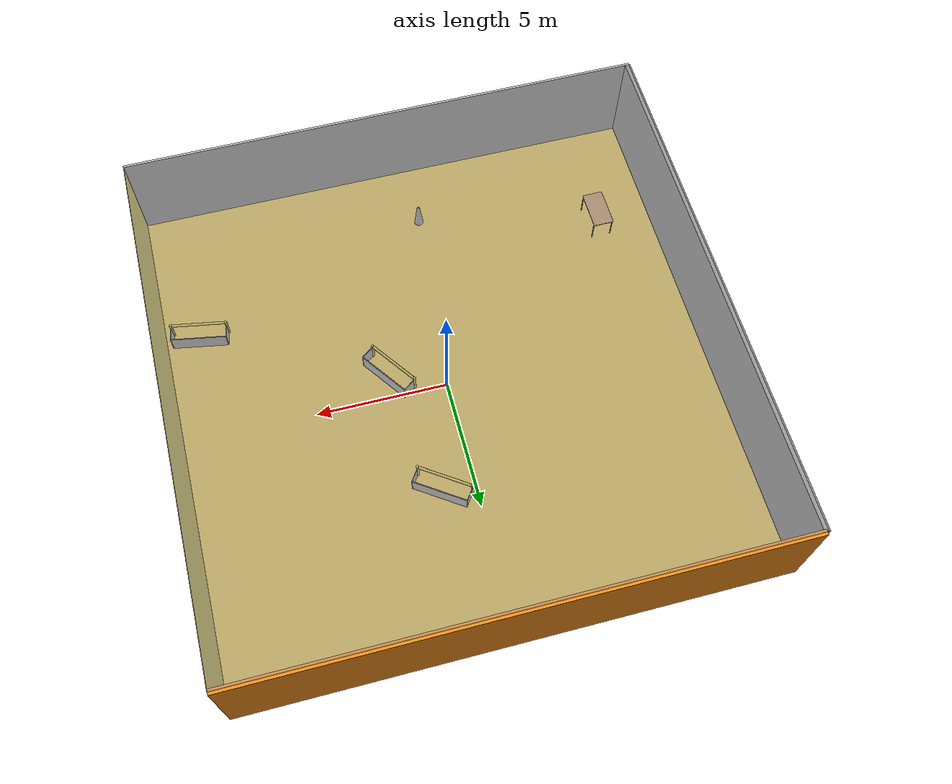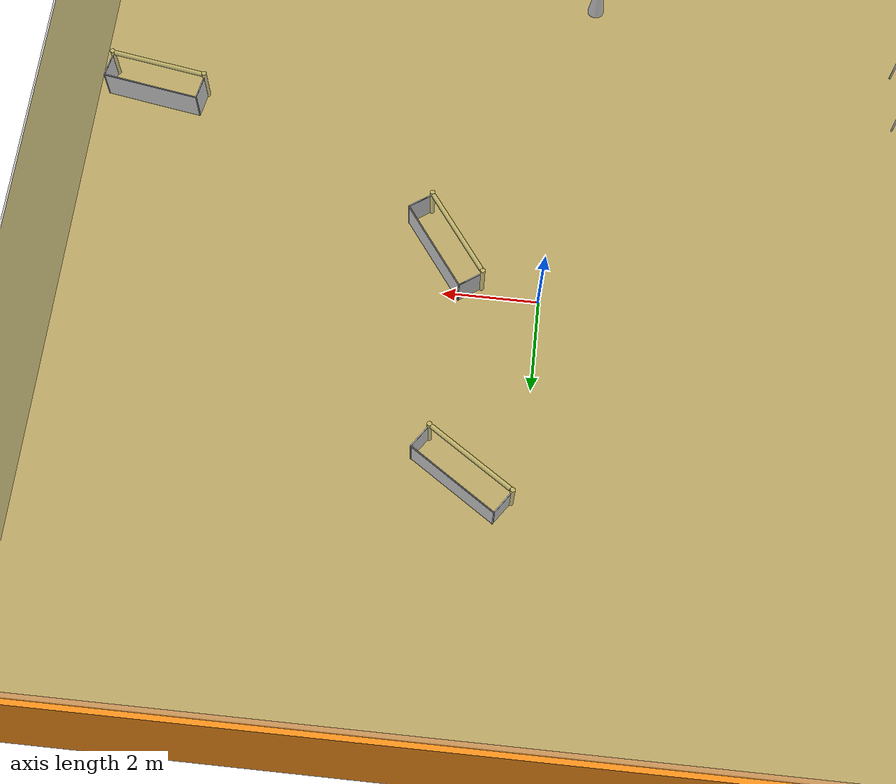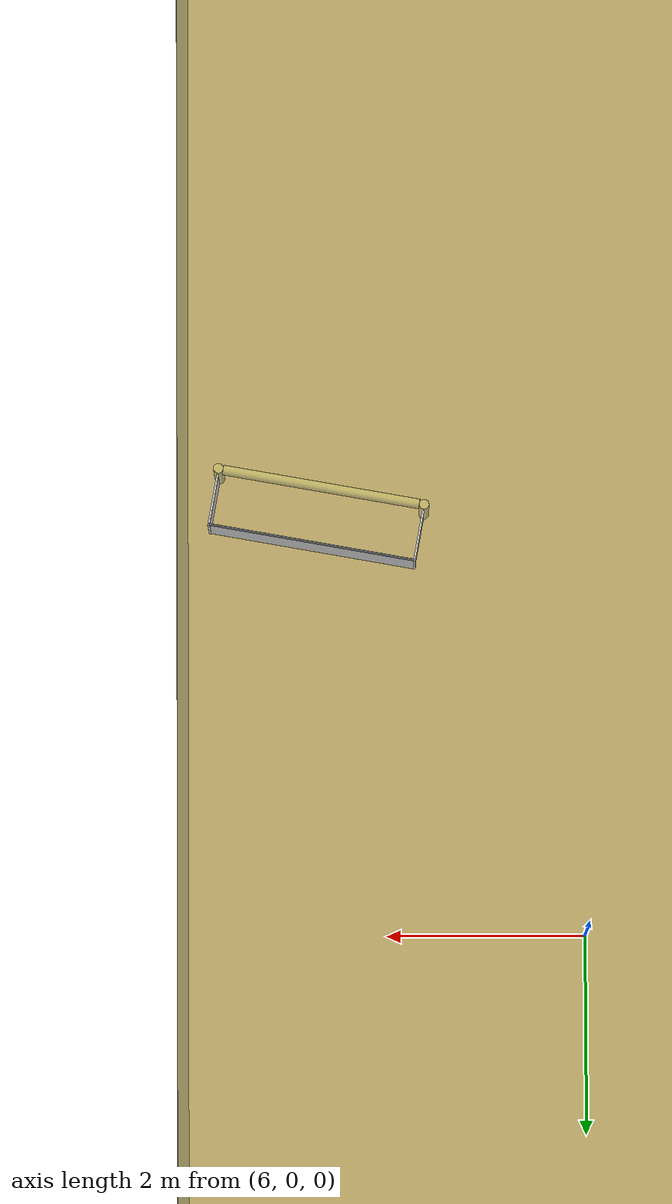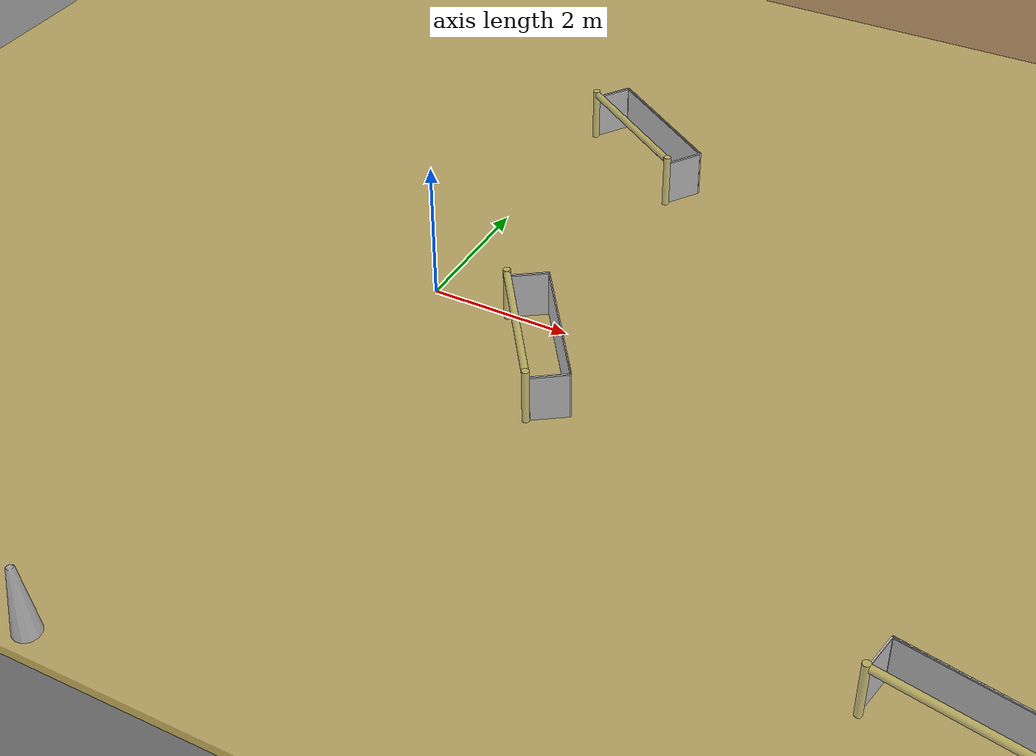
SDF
<sdf version="1.4">
 <world name="default">
  <physics type="ode">
   <max_step_size>0.001</max_step_size>
   <real_time_factor>1</real_time_factor>
   <real_time_update_rate>1000</real_time_update_rate>
   <gravity>0 0 -9.8</gravity>
  </physics>
  <scene><ambient>0.4 0.4 0.4 1</ambient><background>0.7 0.7 0.7 1</background><shadows>1</shadows></scene>
  <model name="Surrounding">
   <static>1</static>
   <link name="Ceiling">
    <collision name="Ceiling_Collision"><geometry><box><size>20 20 0.1</size></box></geometry></collision>
    <visual name="Ceiling_Visual">
     <geometry><box><size>20 20 0.1</size></box></geometry>
     <material>
      <script><uri>file://media/materials/scripts/gazebo.material</uri><name>Gazebo/GreyTransparent</name></script>
     </material>
    </visual>
    <pose>0 0 4.05 0 0 0</pose>
   </link>
   <link name="Wall_South">
    <collision name="Wall_South_Collision">
     <geometry><box><size>20 0 4</size></box></geometry>
     <pose>0 0 2 0 -0 0</pose>
    </collision>
    <visual name="Wall_South_Visual">
     <pose>0 0 2 0 -0 0</pose>
     <geometry><box><size>20 0 4</size></box></geometry>
     <material>
      <script><uri>file://media/materials/scripts/gazebo.material</uri><name>Gazebo/PioneerBody</name></script>
     </material>
    </visual>
    <velocity_decay><linear>0</linear><angular>0</angular></velocity_decay>
    <pose>0 -10 0 0 -0 0</pose>
   </link>
   <link name="Wall_East">
    <collision name="Wall_21_Collision">
     <geometry><box><size>20 0 4</size></box></geometry>
     <pose>0 0 2 0 -0 0</pose>
    </collision>
    <visual name="Wall_21_Visual">
     <pose>0 0 2 0 -0 0</pose>
     <geometry><box><size>20 0 4</size></box></geometry>
     <material>
      <script><uri>file://media/materials/scripts/gazebo.material</uri><name>Gazebo/ZincYellow</name></script>
     </material>
    </visual>
    <velocity_decay><linear>0</linear><angular>0</angular></velocity_decay>
    <pose>10 0 0 0 -0 1.5708</pose>
   </link>
   <link name="Wall_North">
    <collision name="Wall_22_Collision">
     <geometry><box><size>20 0.2 4</size></box></geometry>
     <pose>0 0 2 0 -0 0</pose>
    </collision>
    <visual name="Wall_22_Visual">
     <pose>0 0 2 0 -0 0</pose>
     <geometry><box><size>20 0.2 4</size></box></geometry>
     <material>
      <script><uri>file://media/materials/scripts/gazebo.material</uri><name>Gazebo/Orange</name></script>
     </material>
    </visual>
    <velocity_decay><linear>0</linear><angular>0</angular></velocity_decay>
    <pose>0 10 0 0 -0 0</pose>
   </link>
   <link name="Wall_West">
    <collision name="Wall_23_Collision">
     <geometry><box><size>20 0.2 4</size></box></geometry>
     <pose>0 0 2 0 -0 0</pose>
    </collision>
    <visual name="Wall_23_Visual">
     <pose>0 0 2 0 -0 0</pose>
     <geometry><box><size>20 0.2 4</size></box></geometry>
     <material>
      <script><uri>file://media/materials/scripts/gazebo.material</uri><name>Gazebo/GreyGradientSky</name></script>
     </material>
    </visual>
    <velocity_decay><linear>0</linear><angular>0</angular></velocity_decay>
    <pose>-10 0 0 0 0 -1.5708</pose>
   </link>
   <link name="Ground_link">
    <collision name="collision">
     <pose>0 0 .05 0 -0 0</pose>
     <geometry><box><size>20 20 0.1</size></box></geometry>
    </collision>
    <visual name="visual">
     <pose>0 0 .05 0 -0 0</pose>
     <geometry><box><size>20 20 0.1</size></box></geometry>
     <material>
      <script><uri>file://media/materials/scripts/gazebo.material</uri><name>Gazebo/Gold</name></script>
     </material>
    </visual>
   </link>
   <static>1</static>
  </model>
  <spherical_coordinates>
   <surface_model>EARTH_WGS84</surface_model>
   <latitude_deg>0</latitude_deg>
   <longitude_deg>0</longitude_deg>
   <elevation>0</elevation>
   <heading_deg>0</heading_deg>
  </spherical_coordinates>
  <light name="lightball_0" type="diffuse">
   <diffuse>0.8 0.8 0.8 1</diffuse>
   <specular>0.2 0.2 0.2 1</specular>
   <attenuation>
    <range>100</range>
    <constant>0.7</constant>
    <linear>0.01</linear>
    <quadratic>0.001</quadratic>
   </attenuation>
   <direction>-0.5 0.1 -0.9</direction>
   <pose>6.2822168609 7.05008044359 3.86592189834 0 0 0</pose>
  </light>
  <light name="lightball_1" type="diffuse">
   <diffuse>0.8 0.8 0.8 1</diffuse>
   <specular>0.2 0.2 0.2 1</specular>
   <attenuation>
    <range>100</range>
    <constant>0.7</constant>
    <linear>0.01</linear>
    <quadratic>0.001</quadratic>
   </attenuation>
   <direction>-0.5 0.1 -0.9</direction>
   <pose>-6.54626562218 -2.73923544336 2.24742081206 0 0 0</pose>
  </light>
  <light name="lightball_2" type="diffuse">
   <diffuse>0.8 0.8 0.8 1</diffuse>
   <specular>0.2 0.2 0.2 1</specular>
   <attenuation>
    <range>100</range>
    <constant>0.7</constant>
    <linear>0.01</linear>
    <quadratic>0.001</quadratic>
   </attenuation>
   <direction>-0.5 0.1 -0.9</direction>
   <pose>6.14173782871 -6.58648511284 2.86311546895 0 0 0</pose>
  </light>
  <light name="lightball_3" type="diffuse">
   <diffuse>0.8 0.8 0.8 1</diffuse>
   <specular>0.2 0.2 0.2 1</specular>
   <attenuation>
    <range>100</range>
    <constant>0.7</constant>
    <linear>0.01</linear>
    <quadratic>0.001</quadratic>
   </attenuation>
   <direction>-0.5 0.1 -0.9</direction>
   <pose>-4.92530593858 4.25798101217 3.57456487431 0 0 0</pose>
  </light>
  <light name="lightball_4" type="diffuse">
   <diffuse>0.8 0.8 0.8 1</diffuse>
   <specular>0.2 0.2 0.2 1</specular>
   <attenuation>
    <range>100</range>
    <constant>0.7</constant>
    <linear>0.01</linear>
    <quadratic>0.001</quadratic>
   </attenuation>
   <direction>-0.5 0.1 -0.9</direction>
   <pose>-8.1463753253 5.70236988476 2.81824091881 0 0 0</pose>
  </light>
  <light name="lightball_5" type="diffuse">
   <diffuse>0.8 0.8 0.8 1</diffuse>
   <specular>0.2 0.2 0.2 1</specular>
   <attenuation>
    <range>100</range>
    <constant>0.7</constant>
    <linear>0.01</linear>
    <quadratic>0.001</quadratic>
   </attenuation>
   <direction>-0.5 0.1 -0.9</direction>
   <pose>-5.01068905586 1.17331627964 2.93509852975 0 0 0</pose>
  </light>
  <light name="lightball_6" type="diffuse">
   <diffuse>0.8 0.8 0.8 1</diffuse>
   <specular>0.2 0.2 0.2 1</specular>
   <attenuation>
    <range>100</range>
    <constant>0.7</constant>
    <linear>0.01</linear>
    <quadratic>0.001</quadratic>
   </attenuation>
   <direction>-0.5 0.1 -0.9</direction>
   <pose>7.87506555163 -3.53495862551 0.859140317569 0 0 0</pose>
  </light>
  <light name="lightball_7" type="diffuse">
   <diffuse>0.8 0.8 0.8 1</diffuse>
   <specular>0.2 0.2 0.2 1</specular>
   <attenuation>
    <range>100</range>
    <constant>0.7</constant>
    <linear>0.01</linear>
    <quadratic>0.001</quadratic>
   </attenuation>
   <direction>-0.5 0.1 -0.9</direction>
   <pose>-0.378975198676 8.3122732729 2.19447333579 0 0 0</pose>
  </light>
  <light name="lightball_8" type="diffuse">
   <diffuse>0.8 0.8 0.8 1</diffuse>
   <specular>0.2 0.2 0.2 1</specular>
   <attenuation>
    <range>100</range>
    <constant>0.7</constant>
    <linear>0.01</linear>
    <quadratic>0.001</quadratic>
   </attenuation>
   <direction>-0.5 0.1 -0.9</direction>
   <pose>4.85516891193 -7.69851462329 3.6653881714 0 0 0</pose>
  </light>
  <light name="lightball_9" type="diffuse">
   <diffuse>0.8 0.8 0.8 1</diffuse>
   <specular>0.2 0.2 0.2 1</specular>
   <attenuation>
    <range>100</range>
    <constant>0.7</constant>
    <linear>0.01</linear>
    <quadratic>0.001</quadratic>
   </attenuation>
   <direction>-0.5 0.1 -0.9</direction>
   <pose>4.04732279539 0.900325204129 3.42926153061 0 0 0</pose>
  </light>
  <light name="lightball_10" type="diffuse">
   <diffuse>0.8 0.8 0.8 1</diffuse>
   <specular>0.2 0.2 0.2 1</specular>
   <attenuation>
    <range>100</range>
    <constant>0.7</constant>
    <linear>0.01</linear>
    <quadratic>0.001</quadratic>
   </attenuation>
   <direction>-0.5 0.1 -0.9</direction>
   <pose>-4.497785278 3.43028273379 2.60517007181 0 0 0</pose>
  </light>
  <include><uri>model://table</uri><pose>-7.71276691613 -5.62697993932 0 0 0 1.58285802847</pose></include>
  <include>
   <uri>model://construction_cone</uri>
   <pose>-0.734402553121 -7.41358611947 0 0 0 2.52271387807</pose>
  </include>
  <include>
   <uri>model://robocup_3Dsim_goal</uri>
   <pose>1.80671481073 -1.01848334099 0 0 0 0.611800480971</pose>
  </include>
  <include>
   <uri>model://robocup_3Dsim_goal</uri>
   <pose>1.07352189344 3.88995475784 0 0 0 0.967439478658</pose>
  </include>
  <include>
   <uri>model://robocup_3Dsim_goal</uri>
   <pose>8.64162203383 -4.47607273982 0 0 0 1.39228171297</pose>
  </include>
 </world>
</sdf>

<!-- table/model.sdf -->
<sdf version="1.5">
  <model name="table">
    <static>true</static>
    <link name="link">
      <collision name="surface">
        <pose>0 0 1.0 0 0 0</pose>
        <geometry>
          <box>
            <size>1.5 0.8 0.03</size>
          </box>
        </geometry>
        <surface>
          <friction>
            <ode>
              <mu>0.6</mu>
              <mu2>0.6</mu2>
            </ode>
          </friction>
        </surface>
      </collision>
      <visual name="visual1">
        <pose>0 0 1.0 0 0 0</pose>
        <geometry>
          <box>
            <size>1.5 0.8 0.03</size>
          </box>
        </geometry>
        <material>
          <script>
            <uri>model://media/materials/scripts/gazebo.material</uri>
            <name>Gazebo/Wood</name>
          </script>
        </material>
      </visual>
      <collision name="front_left_leg">
        <pose>0.68 0.38 0.5 0 0 0</pose>
        <geometry>
          <cylinder>
            <radius>0.02</radius>
            <length>1.0</length>
          </cylinder>
        </geometry>
      </collision>
      <visual name="front_left_leg">
        <pose>0.68 0.38 0.5 0 0 0</pose>
        <geometry>
          <cylinder>
            <radius>0.02</radius>
            <length>1.0</length>
          </cylinder>
        </geometry>
        <material>
          <script>
            <uri>model://media/materials/scripts/gazebo.material</uri>
            <name>Gazebo/Grey</name>
          </script>
        </material>
      </visual>
      <collision name="front_right_leg">
        <pose>0.68 -0.38 0.5 0 0 0</pose>
        <geometry>
          <cylinder>
            <radius>0.02</radius>
            <length>1.0</length>
          </cylinder>
        </geometry>
      </collision>
      <visual name="front_right_leg">
        <pose>0.68 -0.38 0.5 0 0 0</pose>
        <geometry>
          <cylinder>
            <radius>0.02</radius>
            <length>1.0</length>
          </cylinder>
        </geometry>
        <material>
          <script>
            <uri>model://media/materials/scripts/gazebo.material</uri>
            <name>Gazebo/Grey</name>
          </script>
        </material>
      </visual>
      <collision name="back_right_leg">
        <pose>-0.68 -0.38 0.5 0 0 0</pose>
        <geometry>
          <cylinder>
            <radius>0.02</radius>
            <length>1.0</length>
          </cylinder>
        </geometry>
      </collision>
      <visual name="back_right_leg">
        <pose>-0.68 -0.38 0.5 0 0 0</pose>
        <geometry>
          <cylinder>
            <radius>0.02</radius>
            <length>1.0</length>
          </cylinder>
        </geometry>
        <material>
          <script>
            <uri>model://media/materials/scripts/gazebo.material</uri>
            <name>Gazebo/Grey</name>
          </script>
        </material>
      </visual>
      <collision name="back_left_leg">
        <pose>-0.68 0.38 0.5 0 0 0</pose>
        <geometry>
          <cylinder>
            <radius>0.02</radius>
            <length>1.0</length>
          </cylinder>
        </geometry>
      </collision>
      <visual name="back_left_leg">
        <pose>-0.68 0.38 0.5 0 0 0</pose>
        <geometry>
          <cylinder>
            <radius>0.02</radius>
            <length>1.0</length>
          </cylinder>
        </geometry>
        <material>
          <script>
            <uri>model://media/materials/scripts/gazebo.material</uri>
            <name>Gazebo/Grey</name>
          </script>
        </material>
      </visual>
    </link>
  </model>
</sdf>

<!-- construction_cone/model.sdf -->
<sdf version="1.5">
  <model name="Construction Cone">
    <link name="link">
      <collision name="collision">
        <geometry>
          <mesh>
            <scale>10 10 10</scale>
            <uri>file://isr-testbed/construction_cone/meshes/construction_cone.dae</uri>
          </mesh>
        </geometry>
      </collision>
      <visual name="visual">
        <geometry>
          <mesh>
            <scale>10 10 10</scale>
            <uri>file://isr-testbed/construction_cone/meshes/construction_cone.dae</uri>
          </mesh>
        </geometry>
      </visual>
    </link>
  </model>
</sdf>

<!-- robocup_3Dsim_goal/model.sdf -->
<sdf version="1.5">
  <model name="robocup_3d_goal">
    <static>true</static>
    <link name="left_post">
      <pose>0 1.05 0.45 0 0 0</pose>
      <collision name="collision">
        <geometry>
          <cylinder>
            <radius>0.05</radius>
            <length>0.9</length>
          </cylinder>
        </geometry>
      </collision>
      <visual name="visual">
        <geometry>
          <cylinder>
            <radius>0.05</radius>
            <length>0.9</length>
          </cylinder>
        </geometry>
        <material>
          <script>
            <uri>file://media/materials/scripts/gazebo.material</uri>
            <name>Gazebo/ZincYellow</name>
          </script>
        </material>
      </visual>
    </link>
    <link name="left_support_horiz_lower">
      <pose>0.30 1.05 0.01 0 0 0</pose>
      <collision name="collision">
        <geometry>
          <box>
            <size>0.50 0.02 0.02</size>
          </box>
        </geometry>
      </collision>
      <visual name="visual">
        <geometry>
          <box>
            <size>0.50 0.02 0.02</size>
          </box>
        </geometry>
        <material>
          <script>
            <uri>file://media/materials/scripts/gazebo.material</uri>
            <name>Gazebo/White</name>
          </script>
        </material>
      </visual>
    </link>
    <link name="left_support_horiz_upper">
      <pose>0.30 1.05 0.79 0 0 0</pose>
      <collision name="collision">
        <geometry>
          <box>
            <size>0.50 0.02 0.02</size>
          </box>
        </geometry>
      </collision>
      <visual name="visual">
        <geometry>
          <box>
            <size>0.50 0.02 0.02</size>
          </box>
        </geometry>
        <material>
          <script>
            <uri>file://media/materials/scripts/gazebo.material</uri>
            <name>Gazebo/White</name>
          </script>
        </material>
      </visual>
    </link>
    <link name="left_support_vertical">
      <pose>0.56 1.05 0.4 0 1.5708 0</pose>
      <collision name="collision">
        <geometry>
          <box>
            <size>0.80 0.02 0.02</size>
          </box>
        </geometry>
      </collision>
      <visual name="visual">
        <geometry>
          <box>
            <size>0.80 0.02 0.02</size>
          </box>
        </geometry>
        <material>
          <script>
            <uri>file://media/materials/scripts/gazebo.material</uri>
            <name>Gazebo/White</name>
          </script>
        </material>
      </visual>
    </link>
    <link name="right_support_horiz_lower">
      <pose>0.30 -1.05 0.01 0 0 0</pose>
      <collision name="collision">
        <geometry>
          <box>
            <size>0.50 0.02 0.02</size>
          </box>
        </geometry>
      </collision>
      <visual name="visual">
        <geometry>
          <box>
            <size>0.50 0.02 0.02</size>
          </box>
        </geometry>
        <material>
          <script>
            <uri>file://media/materials/scripts/gazebo.material</uri>
            <name>Gazebo/White</name>
          </script>
        </material>
      </visual>
    </link>
    <link name="right_support_horiz_upper">
      <pose>0.30 -1.05 0.79 0 0 0</pose>
      <collision name="collision">
        <geometry>
          <box>
            <size>0.50 0.02 0.02</size>
          </box>
        </geometry>
      </collision>
      <visual name="visual">
        <geometry>
          <box>
            <size>0.50 0.02 0.02</size>
          </box>
        </geometry>
        <material>
          <script>
            <uri>file://media/materials/scripts/gazebo.material</uri>
            <name>Gazebo/White</name>
          </script>
        </material>
      </visual>
    </link>
    <link name="right_support_vertical">
      <pose>0.56 -1.05 0.4 0 1.5708 0</pose>
      <collision name="collision">
        <geometry>
          <box>
            <size>0.80 0.02 0.02</size>
          </box>
        </geometry>
      </collision>
      <visual name="visual">
        <geometry>
          <box>
            <size>0.80 0.02 0.02</size>
          </box>
        </geometry>
        <material>
          <script>
            <uri>file://media/materials/scripts/gazebo.material</uri>
            <name>Gazebo/White</name>
          </script>
        </material>
      </visual>
    </link>
    <link name="center_support_horiz_lower">
      <pose>0.56 0 0.01 0 1.5708 0</pose>
      <collision name="collision">
        <geometry>
          <box>
            <size>0.02 2.08 0.02</size>
          </box>
        </geometry>
      </collision>
      <visual name="visual">
        <geometry>
          <box>
            <size>0.02 2.08 0.02</size>
          </box>
        </geometry>
        <material>
          <script>
            <uri>file://media/materials/scripts/gazebo.material</uri>
            <name>Gazebo/White</name>
          </script>
        </material>
      </visual>
    </link>
    <link name="center_support_horiz_upper">
      <pose>0.56 0 0.79 0 1.5708 0</pose>
      <collision name="collision">
        <geometry>
          <box>
            <size>0.02 2.08 0.02</size>
          </box>
        </geometry>
      </collision>
      <visual name="visual">
        <geometry>
          <box>
            <size>0.02 2.08 0.02</size>
          </box>
        </geometry>
        <material>
          <script>
            <uri>file://media/materials/scripts/gazebo.material</uri>
            <name>Gazebo/White</name>
          </script>
        </material>
      </visual>
    </link>
    <link name="right_post">
      <pose>0 -1.05 0.45 0 0 0</pose>
      <collision name="collision">
        <geometry>
          <cylinder>
            <radius>0.05</radius>
            <length>0.9</length>
          </cylinder>
        </geometry>
      </collision>
      <visual name="visual">
        <geometry>
          <cylinder>
            <radius>0.05</radius>
            <length>0.9</length>
          </cylinder>
        </geometry>
        <material>
          <script>
            <uri>file://media/materials/scripts/gazebo.material</uri>
            <name>Gazebo/ZincYellow</name>
          </script>
        </material>
      </visual>
    </link>
    <link name="crossbar">
      <pose>0 0 0.85 1.57 1.57 0</pose>
      <collision name="collision">
        <geometry>
          <cylinder>
            <radius>0.05</radius>
            <length>2.0</length>
          </cylinder>
        </geometry>
      </collision>
      <visual name="visual">
        <geometry>
          <cylinder>
            <radius>0.05</radius>
            <length>2.0</length>
          </cylinder>
        </geometry>
        <material>
          <script>
            <uri>file://media/materials/scripts/gazebo.material</uri>
            <name>Gazebo/ZincYellow</name>
          </script>
        </material>
      </visual>
    </link>
    <link name="center_net">
      <pose>0.56 0 0.40 0 0 0</pose>
      <collision name="collision">
        <geometry>
          <box>
            <size>0.01 2.1 0.80</size>
          </box>
        </geometry>
      </collision>
      <visual name="visual">
        <geometry>
          <box>
            <size>0.01 2.1 0.80</size>
          </box>
        </geometry>
        <material>
          <script>
            <uri>model://../model_source/models/robocup09_spl_field/materials/scripts/</uri>
            <uri>model://../model_source/models/robocup09_spl_field/materials/textures/</uri>
            <name>RoboCup/Net</name>
          </script>
        </material>
      </visual>
    </link>
    <link name="left_net">
      <pose>0.30 1.05 0.40 0 0 0</pose>
      <collision name="collision">
        <geometry>
          <box>
            <size>0.50 0.01 0.76</size>
          </box>
        </geometry>
      </collision>
      <visual name="visual">
        <geometry>
          <box>
            <size>0.50 0.01 0.76</size>
          </box>
        </geometry>
        <material>
          <script>
            <uri>model://../model_source/models/robocup09_spl_field/materials/scripts/</uri>
            <uri>model://../model_source/models/robocup09_spl_field/materials/textures/</uri>
            <name>RoboCup/Net</name>
          </script>
        </material>
      </visual>
    </link>
    <link name="right_net">
      <pose>0.30 -1.05 0.40 0 0 0</pose>
      <collision name="collision">
        <geometry>
          <box>
            <size>0.50 0.01 0.76</size>
          </box>
        </geometry>
      </collision>
      <visual name="visual">
        <geometry>
          <box>
            <size>0.50 0.01 0.76</size>
          </box>
        </geometry>
        <material>
          <script>
            <uri>model://../model_source/models/robocup09_spl_field/materials/scripts/</uri>
            <uri>model://../model_source/models/robocup09_spl_field/materials/textures/</uri>
            <name>RoboCup/Net</name>
          </script>
        </material>
      </visual>
    </link>
  </model>
</sdf>
